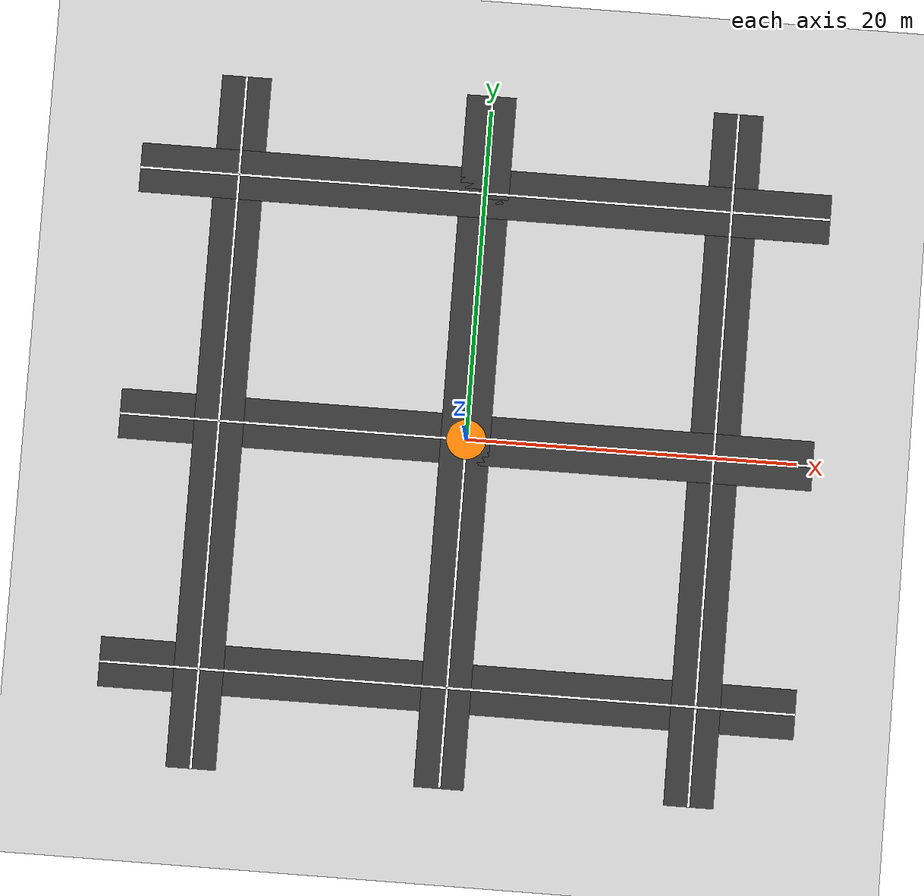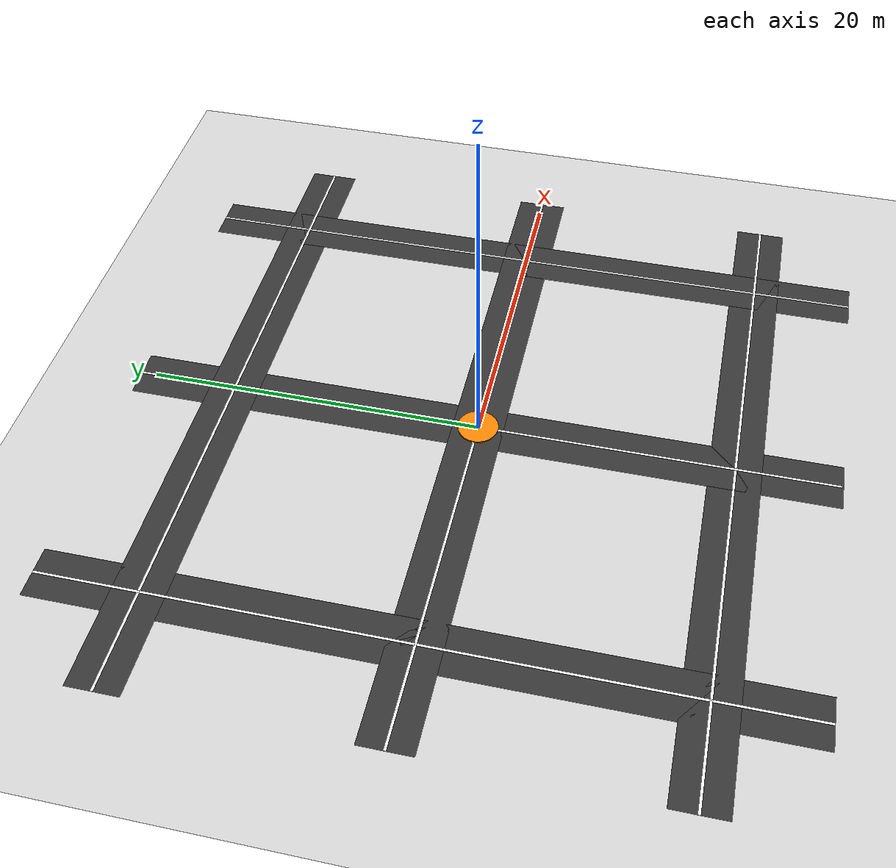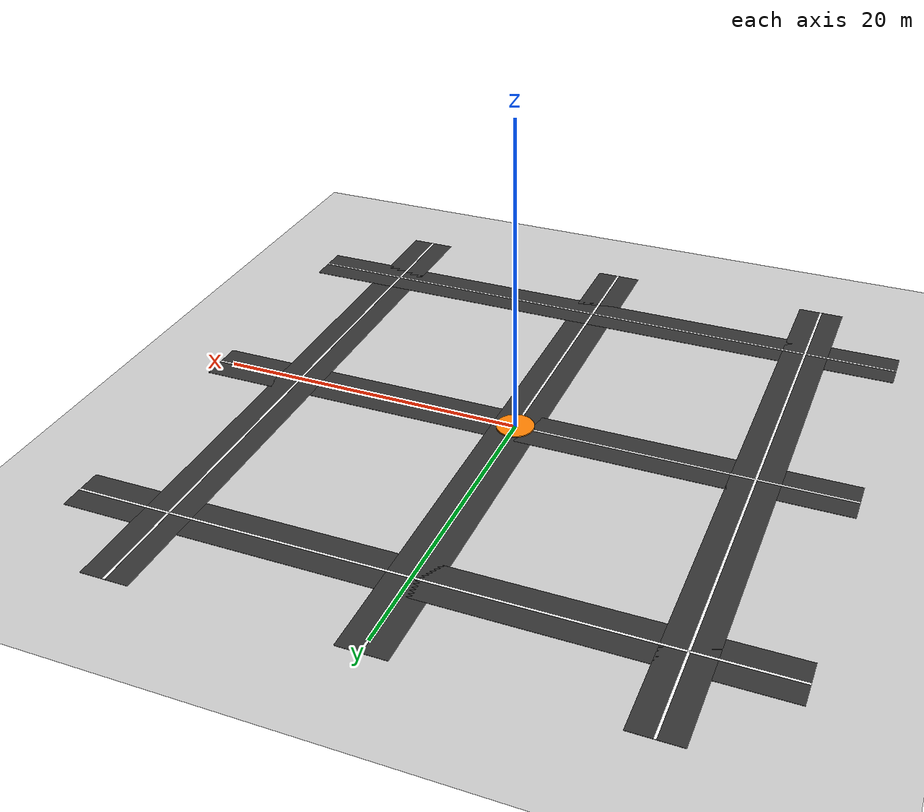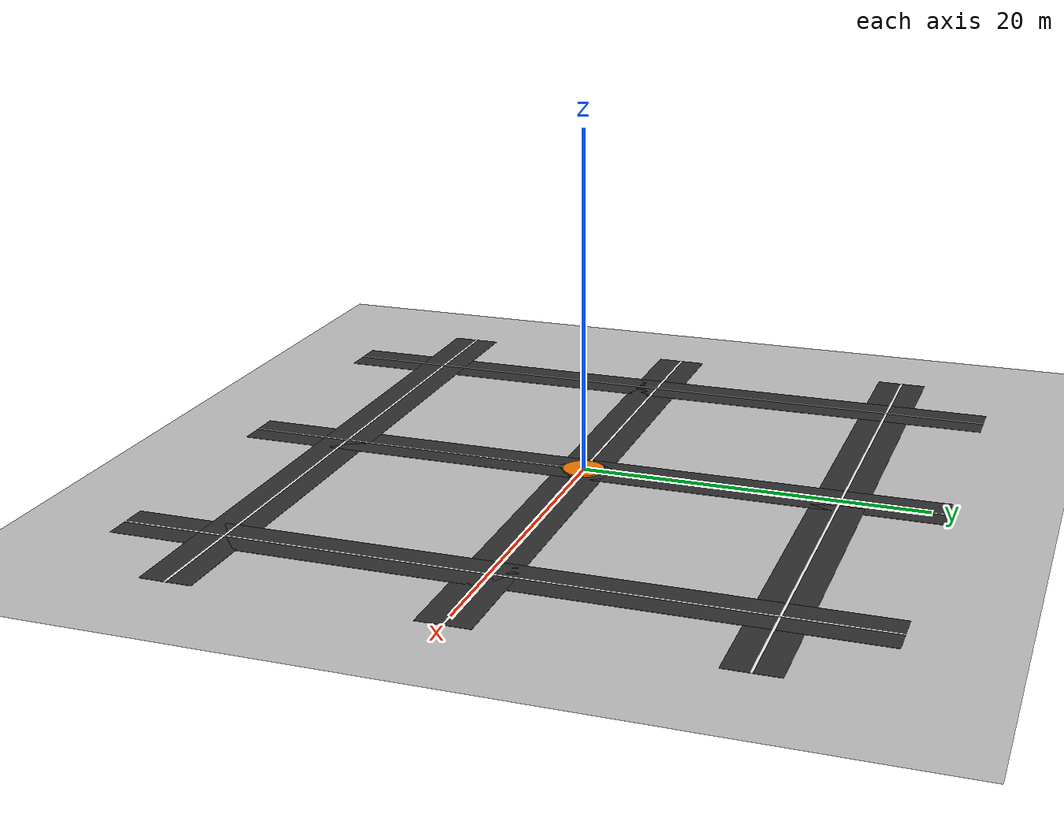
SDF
<sdf version="1.7">
 <world name="delivery_city">
  <physics type="ode">
   <real_time_update_rate>1000</real_time_update_rate>
   <max_step_size>0.001</max_step_size>
   <real_time_factor>1</real_time_factor>
  </physics>
  <light name="sun" type="directional">
   <pose>0 0 10 0 -0 0</pose>
   <diffuse>0.8 0.8 0.8 1</diffuse>
   <specular>0.2 0.2 0.2 1</specular>
   <attenuation>
    <range>1000</range>
    <constant>0.9</constant>
    <linear>0.01</linear>
    <quadratic>0.001</quadratic>
   </attenuation>
   <direction>-0.5 0.1 -0.9</direction>
   <spot><inner_angle>0</inner_angle><outer_angle>0</outer_angle><falloff>0</falloff></spot>
  </light>
  <model name="ground_plane">
   <static>1</static>
   <link name="link">
    <collision name="collision">
     <geometry><plane><normal>0 0 1</normal><size>100 100</size></plane></geometry>
     <surface><friction><ode><mu>100</mu><mu2>50</mu2></ode></friction></surface>
    </collision>
    <visual name="visual">
     <cast_shadows>0</cast_shadows>
     <geometry><plane><normal>0 0 1</normal><size>100 100</size></plane></geometry>
     <material>
      <script><uri>file://media/materials/scripts/gazebo.material</uri><name>Gazebo/Grey</name></script>
     </material>
    </visual>
   </link>
  </model>
  <model name="road_h1">
   <static>1</static>
   <pose>0 -15 0.01 0 -0 0</pose>
   <link name="link">
    <collision name="c"><geometry><box><size>42 3 0.02</size></box></geometry></collision>
    <visual name="v">
     <geometry><box><size>42 3 0.02</size></box></geometry>
     <material><ambient>0.2 0.2 0.2 1</ambient></material>
    </visual>
   </link>
  </model>
  <model name="road_h2">
   <static>1</static>
   <pose>0 0 0.01 0 -0 0</pose>
   <link name="link">
    <collision name="c"><geometry><box><size>42 3 0.02</size></box></geometry></collision>
    <visual name="v">
     <geometry><box><size>42 3 0.02</size></box></geometry>
     <material><ambient>0.2 0.2 0.2 1</ambient></material>
    </visual>
   </link>
  </model>
  <model name="road_h3">
   <static>1</static>
   <pose>0 15 0.01 0 -0 0</pose>
   <link name="link">
    <collision name="c"><geometry><box><size>42 3 0.02</size></box></geometry></collision>
    <visual name="v">
     <geometry><box><size>42 3 0.02</size></box></geometry>
     <material><ambient>0.2 0.2 0.2 1</ambient></material>
    </visual>
   </link>
  </model>
  <model name="road_v1">
   <static>1</static>
   <pose>-15 0 0.01 0 -0 0</pose>
   <link name="link">
    <collision name="c"><geometry><box><size>3 42 0.02</size></box></geometry></collision>
    <visual name="v">
     <geometry><box><size>3 42 0.02</size></box></geometry>
     <material><ambient>0.2 0.2 0.2 1</ambient></material>
    </visual>
   </link>
  </model>
  <model name="road_v2">
   <static>1</static>
   <pose>-0.050994 -0.047602 0.01 0 -0 0</pose>
   <link name="link">
    <collision name="c"><geometry><box><size>3 42 0.02</size></box></geometry></collision>
    <visual name="v">
     <geometry><box><size>3 42 0.02</size></box></geometry>
     <material><ambient>0.2 0.2 0.2 1</ambient></material>
    </visual>
   </link>
  </model>
  <model name="road_v3">
   <static>1</static>
   <pose>15 0 0.01 0 -0 0</pose>
   <link name="link">
    <collision name="c"><geometry><box><size>3 42 0.02</size></box></geometry></collision>
    <visual name="v">
     <geometry><box><size>3 42 0.02</size></box></geometry>
     <material><ambient>0.2 0.2 0.2 1</ambient></material>
    </visual>
   </link>
  </model>
  <model name="line_h1">
   <static>1</static>
   <pose>0 -15 0.02 0 -0 0</pose>
   <link name="link">
    <visual name="v">
     <geometry><box><size>42 0.15 0.01</size></box></geometry>
     <material><ambient>1 1 1 1</ambient></material>
    </visual>
   </link>
  </model>
  <model name="line_h2">
   <static>1</static>
   <pose>0 0 0.02 0 -0 0</pose>
   <link name="link">
    <visual name="v">
     <geometry><box><size>42 0.15 0.01</size></box></geometry>
     <material><ambient>1 1 1 1</ambient></material>
    </visual>
   </link>
  </model>
  <model name="line_h3">
   <static>1</static>
   <pose>0 15 0.02 0 -0 0</pose>
   <link name="link">
    <visual name="v">
     <geometry><box><size>42 0.15 0.01</size></box></geometry>
     <material><ambient>1 1 1 1</ambient></material>
    </visual>
   </link>
  </model>
  <model name="line_v1">
   <static>1</static>
   <pose>-15 0 0.02 0 -0 0</pose>
   <link name="link">
    <visual name="v">
     <geometry><box><size>0.15 42 0.01</size></box></geometry>
     <material><ambient>1 1 1 1</ambient></material>
    </visual>
   </link>
  </model>
  <model name="line_v2">
   <static>1</static>
   <pose>0 0 0.02 0 -0 0</pose>
   <link name="link">
    <visual name="v">
     <geometry><box><size>0.15 42 0.01</size></box></geometry>
     <material><ambient>1 1 1 1</ambient></material>
    </visual>
   </link>
  </model>
  <model name="line_v3">
   <static>1</static>
   <pose>15 0 0.02 0 -0 0</pose>
   <link name="link">
    <visual name="v">
     <geometry><box><size>0.15 42 0.01</size></box></geometry>
     <material><ambient>1 1 1 1</ambient></material>
    </visual>
   </link>
  </model>
  <model name="delivery_base">
   <static>1</static>
   <pose>0 0 0.05 0 -0 0</pose>
   <link name="link">
    <visual name="v">
     <geometry><cylinder><radius>1.2</radius><length>0.1</length></cylinder></geometry>
     <material><ambient>1 0.5 0 1</ambient></material>
    </visual>
   </link>
  </model>
  <gravity>0 0 -9.8</gravity>
  <magnetic_field>6e-06 2.3e-05 -4.2e-05</magnetic_field>
  <atmosphere type="adiabatic"/>
  <scene><ambient>0.4 0.4 0.4 1</ambient><background>0.7 0.7 0.7 1</background><shadows>1</shadows></scene>
  <audio><device>default</device></audio>
  <spherical_coordinates>
   <surface_model>EARTH_WGS84</surface_model>
   <latitude_deg>0</latitude_deg>
   <longitude_deg>0</longitude_deg>
   <elevation>0</elevation>
   <heading_deg>0</heading_deg>
  </spherical_coordinates>
 </world>
</sdf>
